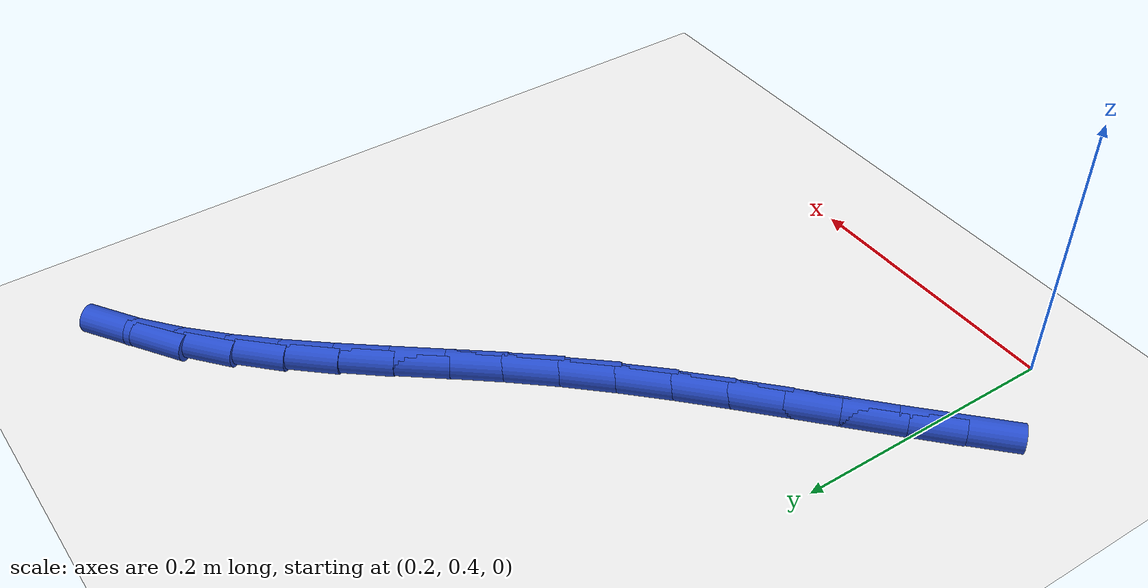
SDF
<sdf version="1.6">
 <world name="default">
  <model name="ground_plane">
   <static>1</static>
   <link name="link">
    <collision name="collision">
     <geometry><plane><normal>0 0 1</normal><size>100 100</size></plane></geometry>
     <surface><friction><ode><mu>100</mu><mu2>50</mu2></ode></friction></surface>
    </collision>
    <visual name="visual">
     <cast_shadows>0</cast_shadows>
     <geometry><plane><normal>0 0 1</normal><size>100 100</size></plane></geometry>
     <material>
      <script><uri>file://media/materials/scripts/gazebo.material</uri><name>Gazebo/WhiteGlow</name></script>
     </material>
    </visual>
   </link>
  </model>
  <model name="line">
   <link name="link_15">
    <pose>0.18108029227031985 0.48987157420656186 0.01 0 1.57 0.7699486038070023</pose>
    <collision name="collision">
     <geometry><cylinder><radius>0.01</radius><length>0.08</length></cylinder></geometry>
    </collision>
    <visual name="visual">
     <material>
      <script><name>Gazebo/Blue</name><uri>file://media/materials/scripts/gazebo.material</uri></script>
     </material>
     <geometry><cylinder><radius>0.01</radius><length>0.08</length></cylinder></geometry>
    </visual>
   </link>
   <link name="link_16">
    <pose>0.20733180084965544 0.5153242129197625 0.01 0 1.57 0.7551450369967525</pose>
    <collision name="collision">
     <geometry><cylinder><radius>0.01</radius><length>0.08</length></cylinder></geometry>
    </collision>
    <visual name="visual">
     <material>
      <script><name>Gazebo/Blue</name><uri>file://media/materials/scripts/gazebo.material</uri></script>
     </material>
     <geometry><cylinder><radius>0.01</radius><length>0.08</length></cylinder></geometry>
    </visual>
   </link>
   <link name="link_17">
    <pose>0.23423175670134516 0.5406438797749761 0.01 0 1.57 0.7499922712167783</pose>
    <collision name="collision">
     <geometry><cylinder><radius>0.01</radius><length>0.08</length></cylinder></geometry>
    </collision>
    <visual name="visual">
     <material>
      <script><name>Gazebo/Blue</name><uri>file://media/materials/scripts/gazebo.material</uri></script>
     </material>
     <geometry><cylinder><radius>0.01</radius><length>0.08</length></cylinder></geometry>
    </visual>
   </link>
   <link name="link_18">
    <pose>0.26149576300514943 0.5660425379408398 0.01 0 1.57 0.7542194108745286</pose>
    <collision name="collision">
     <geometry><cylinder><radius>0.01</radius><length>0.08</length></cylinder></geometry>
    </collision>
    <visual name="visual">
     <material>
      <script><name>Gazebo/Blue</name><uri>file://media/materials/scripts/gazebo.material</uri></script>
     </material>
     <geometry><cylinder><radius>0.01</radius><length>0.08</length></cylinder></geometry>
    </visual>
   </link>
   <link name="link_19">
    <pose>0.2888394229408282 0.5917321505859903 0.01 0 1.57 0.7676546520729435</pose>
    <collision name="collision">
     <geometry><cylinder><radius>0.01</radius><length>0.08</length></cylinder></geometry>
    </collision>
    <visual name="visual">
     <material>
      <script><name>Gazebo/Blue</name><uri>file://media/materials/scripts/gazebo.material</uri></script>
     </material>
     <geometry><cylinder><radius>0.01</radius><length>0.08</length></cylinder></geometry>
    </visual>
   </link>
   <link name="link_20">
    <pose>0.31597833968814204 0.6179246808790648 0.01 0 1.57 0.7902085799642066</pose>
    <collision name="collision">
     <geometry><cylinder><radius>0.01</radius><length>0.08</length></cylinder></geometry>
    </collision>
    <visual name="visual">
     <material>
      <script><name>Gazebo/Blue</name><uri>file://media/materials/scripts/gazebo.material</uri></script>
     </material>
     <geometry><cylinder><radius>0.01</radius><length>0.08</length></cylinder></geometry>
    </visual>
   </link>
   <link name="link_21">
    <pose>0.34262811642685087 0.6448320919887004 0.01 0 1.57 0.8218370101698297</pose>
    <collision name="collision">
     <geometry><cylinder><radius>0.01</radius><length>0.08</length></cylinder></geometry>
    </collision>
    <visual name="visual">
     <material>
      <script><name>Gazebo/Blue</name><uri>file://media/materials/scripts/gazebo.material</uri></script>
     </material>
     <geometry><cylinder><radius>0.01</radius><length>0.08</length></cylinder></geometry>
    </visual>
   </link>
   <link name="link_22">
    <pose>0.36850435633671547 0.6726663470835346 0.01 0 1.57 0.860241233107101</pose>
    <collision name="collision">
     <geometry><cylinder><radius>0.01</radius><length>0.08</length></cylinder></geometry>
    </collision>
    <visual name="visual">
     <material>
      <script><name>Gazebo/Blue</name><uri>file://media/materials/scripts/gazebo.material</uri></script>
     </material>
     <geometry><cylinder><radius>0.01</radius><length>0.08</length></cylinder></geometry>
    </visual>
   </link>
   <link name="link_23">
    <pose>0.39337820583742383 0.7015728128269176 0.01 0 1.57 0.8890972657792442</pose>
    <collision name="collision">
     <geometry><cylinder><radius>0.01</radius><length>0.08</length></cylinder></geometry>
    </collision>
    <visual name="visual">
     <material>
      <script><name>Gazebo/Blue</name><uri>file://media/materials/scripts/gazebo.material</uri></script>
     </material>
     <geometry><cylinder><radius>0.01</radius><length>0.08</length></cylinder></geometry>
    </visual>
   </link>
   <link name="link_24">
    <pose>0.41742746590059676 0.7312092758985341 0.01 0 1.57 0.9014537029326046</pose>
    <collision name="collision">
     <geometry><cylinder><radius>0.01</radius><length>0.08</length></cylinder></geometry>
    </collision>
    <visual name="visual">
     <material>
      <script><name>Gazebo/Blue</name><uri>file://media/materials/scripts/gazebo.material</uri></script>
     </material>
     <geometry><cylinder><radius>0.01</radius><length>0.08</length></cylinder></geometry>
    </visual>
   </link>
   <link name="link_25">
    <pose>0.4410107076216747 0.7610167790768834 0.01 0 1.57 0.8972642154509697</pose>
    <collision name="collision">
     <geometry><cylinder><radius>0.01</radius><length>0.08</length></cylinder></geometry>
    </collision>
    <visual name="visual">
     <material>
      <script><name>Gazebo/Blue</name><uri>file://media/materials/scripts/gazebo.material</uri></script>
     </material>
     <geometry><cylinder><radius>0.01</radius><length>0.08</length></cylinder></geometry>
    </visual>
   </link>
   <link name="link_26">
    <pose>0.4644873232608106 0.7904353805616003 0.01 0 1.57 0.8759630446148179</pose>
    <collision name="collision">
     <geometry><cylinder><radius>0.01</radius><length>0.08</length></cylinder></geometry>
    </collision>
    <visual name="visual">
     <material>
      <script><name>Gazebo/Blue</name><uri>file://media/materials/scripts/gazebo.material</uri></script>
     </material>
     <geometry><cylinder><radius>0.01</radius><length>0.08</length></cylinder></geometry>
    </visual>
   </link>
   <link name="link_27">
    <pose>0.48821670507815695 0.8189051385523197 0.01 0 1.57 0.8364124232769974</pose>
    <collision name="collision">
     <geometry><cylinder><radius>0.01</radius><length>0.08</length></cylinder></geometry>
    </collision>
    <visual name="visual">
     <material>
      <script><name>Gazebo/Blue</name><uri>file://media/materials/scripts/gazebo.material</uri></script>
     </material>
     <geometry><cylinder><radius>0.01</radius><length>0.08</length></cylinder></geometry>
    </visual>
   </link>
   <link name="link_28">
    <pose>0.5125582453338667 0.8458661112486767 0.01 0 1.57 0.777015877273311</pose>
    <collision name="collision">
     <geometry><cylinder><radius>0.01</radius><length>0.08</length></cylinder></geometry>
    </collision>
    <visual name="visual">
     <material>
      <script><name>Gazebo/Blue</name><uri>file://media/materials/scripts/gazebo.material</uri></script>
     </material>
     <geometry><cylinder><radius>0.01</radius><length>0.08</length></cylinder></geometry>
    </visual>
   </link>
   <link name="link_29">
    <pose>0.5378713362880929 0.8707583568503071 0.01 0 1.57 0.6960705561602372</pose>
    <collision name="collision">
     <geometry><cylinder><radius>0.01</radius><length>0.08</length></cylinder></geometry>
    </collision>
    <visual name="visual">
     <material>
      <script><name>Gazebo/Blue</name><uri>file://media/materials/scripts/gazebo.material</uri></script>
     </material>
     <geometry><cylinder><radius>0.01</radius><length>0.08</length></cylinder></geometry>
    </visual>
   </link>
   <link name="link_30">
    <pose>0.5645153702009881 0.8930219335568452 0.01 0 1.57 0.5925185780753299</pose>
    <collision name="collision">
     <geometry><cylinder><radius>0.01</radius><length>0.08</length></cylinder></geometry>
    </collision>
    <visual name="visual">
     <material>
      <script><name>Gazebo/Blue</name><uri>file://media/materials/scripts/gazebo.material</uri></script>
     </material>
     <geometry><cylinder><radius>0.01</radius><length>0.08</length></cylinder></geometry>
    </visual>
   </link>
  </model>
 </world>
</sdf>
